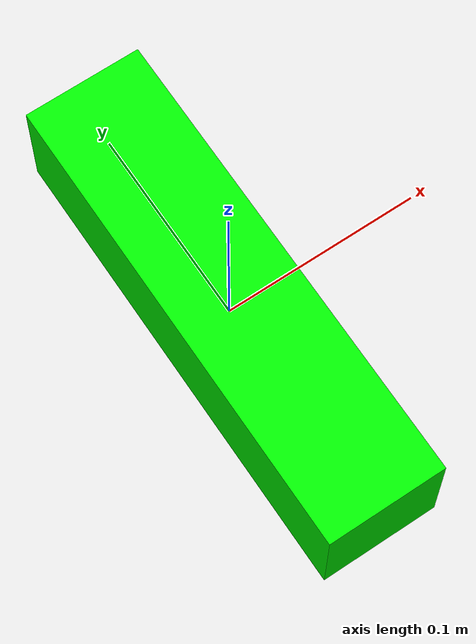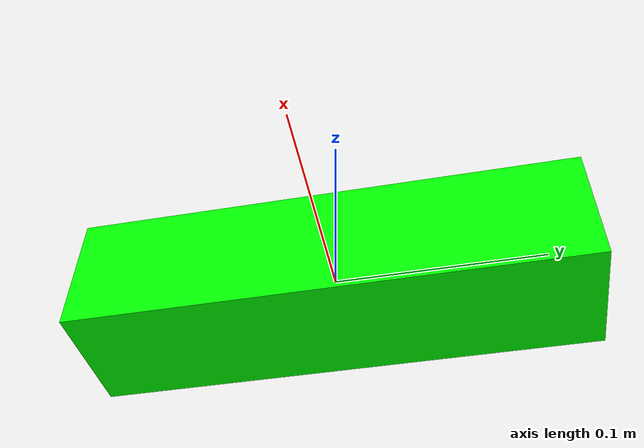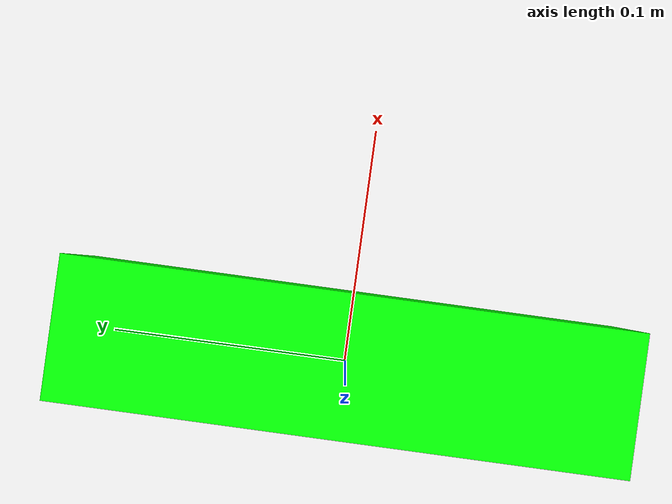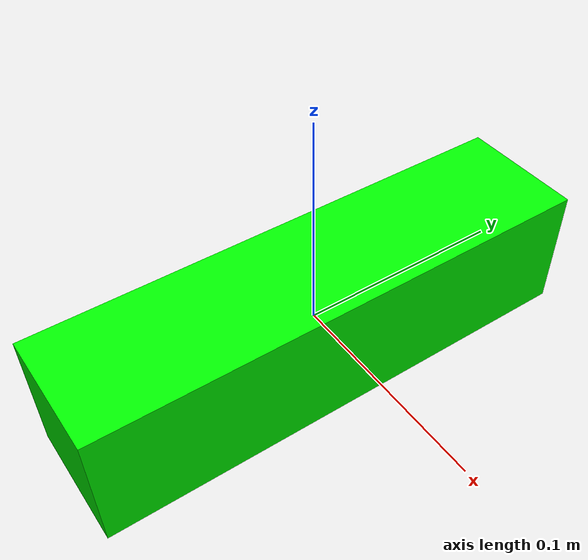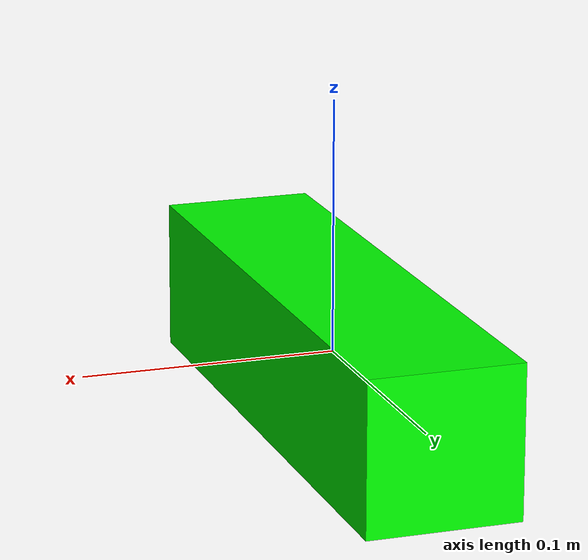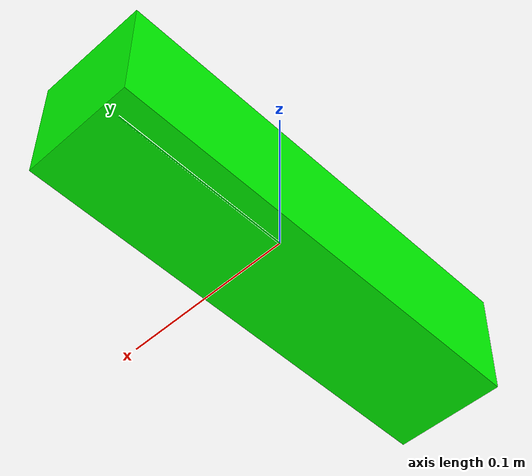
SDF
<?xml version="1.0"?>
<sdf version="1.7">
  <model name="block7">
    <pose> 0 0 0 0 0 0 </pose>
    <link name="block7_link">
      <inertial>
        <mass>0.2</mass>
        <inertia>
          <ixx>0.02591102321140933</ixx>
          <ixy>0.0</ixy>
          <ixz>0.0</ixz>
          <iyy>0.028155796674108682</iyy>
          <iyz>0.0</iyz>
          <izz>0.02591102321140933</izz>
        </inertia>
      </inertial>
      <collision name="collision">
        <geometry>
          <box>
            <size> 0.06 0.24000000000000002 0.06 </size>
          </box>
        </geometry>
        <surface>
            <friction>
                <ode>
                    <mu>1.0</mu>
                    <mu2>1.0</mu2>
                </ode>
            </friction>
        </surface>
      </collision>
      <visual name="visual">
        <geometry>
          <box>
            <size> 0.06 0.24000000000000002 0.06 </size>
          </box>
        </geometry>
        <material>
          <diffuse>0 1 0 1</diffuse>
        </material>
      </visual>
    </link>
  </model>
</sdf>
